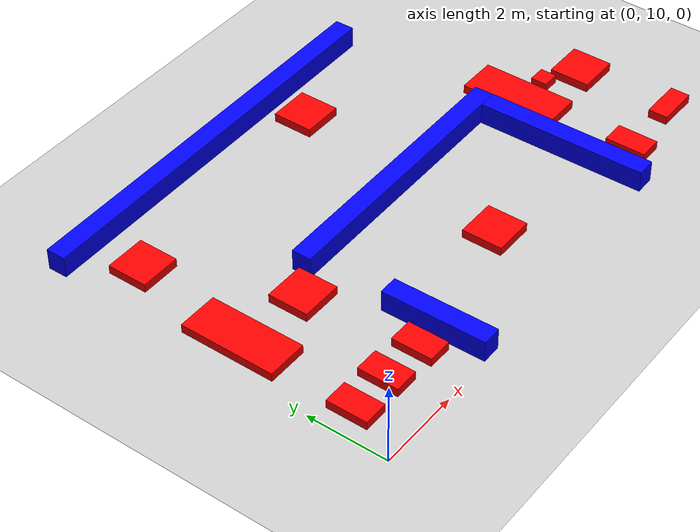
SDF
<sdf version="1.7">
 <world name="default">
  <model name="ground_plane">
   <static>1</static>
   <link name="link">
    <collision name="collision">
     <geometry><plane><normal>0 0 1</normal><size>100 100</size></plane></geometry>
     <surface>
      <contact><collide_bitmask>65535</collide_bitmask></contact>
      <friction><ode><mu>100</mu><mu2>50</mu2></ode></friction>
     </surface>
    </collision>
    <visual name="visual">
     <cast_shadows>0</cast_shadows>
     <geometry><plane><normal>0 0 1</normal><size>100 100</size></plane></geometry>
     <material>
      <script><uri>file://media/materials/scripts/gazebo.material</uri><name>Gazebo/Grey</name></script>
     </material>
    </visual>
   </link>
  </model>
  <model name="blue__wall_clone_clone_clone_clone">
   <link name="link_0">
    <inertial>
     <mass>3.38479</mass>
     <inertia><ixx>51.2617</ixx><ixy>0</ixy><ixz>0</ixz><iyy>0.142515</iyy><iyz>0</iyz><izz>51.2469</izz></inertia>
    </inertial>
    <visual name="visual">
     <geometry><box><size>0.47589 10.1039 0.528001</size></box></geometry>
     <material>
      <lighting>1</lighting>
      <script><uri>file://media/materials/scripts/gazebo.material</uri><name>Gazebo/Grey</name></script>
      <shader type="pixel"><normal_map>__default__</normal_map></shader>
      <ambient>0 0 1 0</ambient>
      <diffuse>0.7 0.7 0.7 1</diffuse>
      <specular>0.01 0.01 0.01 1</specular>
      <emissive>0 0 0 1</emissive>
     </material>
    </visual>
    <collision name="collision">
     <geometry><box><size>0.47589 10.1039 0.528001</size></box></geometry>
     <surface>
      <friction>
       <ode><mu>1</mu><mu2>1</mu2><fdir1>0 0 0</fdir1><slip1>0</slip1><slip2>0</slip2></ode>
       <torsional>
        <coefficient>1</coefficient>
        <patch_radius>0</patch_radius>
        <surface_radius>0</surface_radius>
        <use_patch_radius>1</use_patch_radius>
        <ode><slip>0</slip></ode>
       </torsional>
      </friction>
      <bounce><restitution_coefficient>0</restitution_coefficient><threshold>1e+06</threshold></bounce>
      <contact>
       <collide_without_contact>0</collide_without_contact>
       <collide_without_contact_bitmask>1</collide_without_contact_bitmask>
       <collide_bitmask>1</collide_bitmask>
       <ode>
        <soft_cfm>0</soft_cfm>
        <soft_erp>0.2</soft_erp>
        <kp>1e+13</kp>
        <kd>1</kd>
        <max_vel>0.01</max_vel>
        <min_depth>0</min_depth>
       </ode>
       <bullet>
        <split_impulse>1</split_impulse>
        <split_impulse_penetration_threshold>-0.01</split_impulse_penetration_threshold>
        <soft_cfm>0</soft_cfm>
        <soft_erp>0.2</soft_erp>
        <kp>1e+13</kp>
        <kd>1</kd>
       </bullet>
      </contact>
     </surface>
    </collision>
   </link>
   <static>0</static>
   <pose>5.18293 18.7739 0.264 0 -0 1.58016</pose>
  </model>
  <model name="blue__wall_clone_clone_clone_clone_clone_clone_clone_clone_clone">
   <link name="link_0">
    <inertial>
     <mass>3.38479</mass>
     <inertia><ixx>51.2617</ixx><ixy>0</ixy><ixz>0</ixz><iyy>0.142515</iyy><iyz>0</iyz><izz>51.2469</izz></inertia>
    </inertial>
    <visual name="visual">
     <geometry><box><size>0.47589 2.55946 0.528001</size></box></geometry>
     <material>
      <lighting>1</lighting>
      <script><uri>file://media/materials/scripts/gazebo.material</uri><name>Gazebo/Grey</name></script>
      <shader type="pixel"><normal_map>__default__</normal_map></shader>
      <ambient>0 0 1 0</ambient>
      <diffuse>0.7 0.7 0.7 1</diffuse>
      <specular>0.01 0.01 0.01 1</specular>
      <emissive>0 0 0 1</emissive>
     </material>
    </visual>
    <collision name="collision">
     <geometry><box><size>0.47589 2.55946 0.528001</size></box></geometry>
     <surface>
      <friction>
       <ode><mu>1</mu><mu2>1</mu2><fdir1>0 0 0</fdir1><slip1>0</slip1><slip2>0</slip2></ode>
       <torsional>
        <coefficient>1</coefficient>
        <patch_radius>0</patch_radius>
        <surface_radius>0</surface_radius>
        <use_patch_radius>1</use_patch_radius>
        <ode><slip>0</slip></ode>
       </torsional>
      </friction>
      <bounce><restitution_coefficient>0</restitution_coefficient><threshold>1e+06</threshold></bounce>
      <contact>
       <collide_without_contact>0</collide_without_contact>
       <collide_without_contact_bitmask>1</collide_without_contact_bitmask>
       <collide_bitmask>1</collide_bitmask>
       <ode>
        <soft_cfm>0</soft_cfm>
        <soft_erp>0.2</soft_erp>
        <kp>1e+13</kp>
        <kd>1</kd>
        <max_vel>0.01</max_vel>
        <min_depth>0</min_depth>
       </ode>
       <bullet>
        <split_impulse>1</split_impulse>
        <split_impulse_penetration_threshold>-0.01</split_impulse_penetration_threshold>
        <soft_cfm>0</soft_cfm>
        <soft_erp>0.2</soft_erp>
        <kp>1e+13</kp>
        <kd>1</kd>
       </bullet>
      </contact>
     </surface>
    </collision>
   </link>
   <static>0</static>
   <pose>3.50586 11.3064 0.264 0 0 -3.12763</pose>
  </model>
  <model name="blue__wall_clone_clone_clone_clone_clone_clone_clone_clone_clone_0">
   <link name="link_0">
    <inertial>
     <mass>3.38479</mass>
     <inertia><ixx>51.2617</ixx><ixy>0</ixy><ixz>0</ixz><iyy>0.142515</iyy><iyz>0</iyz><izz>51.2469</izz></inertia>
    </inertial>
    <visual name="visual">
     <geometry><box><size>0.47589 4.18247 0.528001</size></box></geometry>
     <material>
      <lighting>1</lighting>
      <script><uri>file://media/materials/scripts/gazebo.material</uri><name>Gazebo/Grey</name></script>
      <shader type="pixel"><normal_map>__default__</normal_map></shader>
      <ambient>0 0 1 0</ambient>
      <diffuse>0.7 0.7 0.7 1</diffuse>
      <specular>0.01 0.01 0.01 1</specular>
      <emissive>0 0 0 1</emissive>
     </material>
    </visual>
    <collision name="collision">
     <geometry><box><size>0.47589 4.18247 0.528001</size></box></geometry>
     <surface>
      <friction>
       <ode><mu>1</mu><mu2>1</mu2><fdir1>0 0 0</fdir1><slip1>0</slip1><slip2>0</slip2></ode>
       <torsional>
        <coefficient>1</coefficient>
        <patch_radius>0</patch_radius>
        <surface_radius>0</surface_radius>
        <use_patch_radius>1</use_patch_radius>
        <ode><slip>0</slip></ode>
       </torsional>
      </friction>
      <bounce><restitution_coefficient>0</restitution_coefficient><threshold>1e+06</threshold></bounce>
      <contact>
       <collide_without_contact>0</collide_without_contact>
       <collide_without_contact_bitmask>1</collide_without_contact_bitmask>
       <collide_bitmask>1</collide_bitmask>
       <ode>
        <soft_cfm>0</soft_cfm>
        <soft_erp>0.2</soft_erp>
        <kp>1e+13</kp>
        <kd>1</kd>
        <max_vel>0.01</max_vel>
        <min_depth>0</min_depth>
       </ode>
       <bullet>
        <split_impulse>1</split_impulse>
        <split_impulse_penetration_threshold>-0.01</split_impulse_penetration_threshold>
        <soft_cfm>0</soft_cfm>
        <soft_erp>0.2</soft_erp>
        <kp>1e+13</kp>
        <kd>1</kd>
       </bullet>
      </contact>
     </surface>
    </collision>
   </link>
   <static>0</static>
   <pose>9.87082 12.3354 0.264 0 -0 -3.13011</pose>
  </model>
  <model name="blue__wall_clone_clone_clone_clone_clone_clone_0">
   <link name="link_0">
    <inertial>
     <mass>3.38479</mass>
     <inertia><ixx>51.2617</ixx><ixy>0</ixy><ixz>0</ixz><iyy>0.142515</iyy><iyz>0</iyz><izz>51.2469</izz></inertia>
    </inertial>
    <visual name="visual">
     <geometry><box><size>0.47589 6.9172 0.528001</size></box></geometry>
     <material>
      <lighting>1</lighting>
      <script><uri>file://media/materials/scripts/gazebo.material</uri><name>Gazebo/Grey</name></script>
      <shader type="pixel"><normal_map>__default__</normal_map></shader>
      <ambient>0 0 1 0</ambient>
      <diffuse>0.7 0.7 0.7 1</diffuse>
      <specular>0.01 0.01 0.01 1</specular>
      <emissive>0 0 0 1</emissive>
     </material>
    </visual>
    <collision name="collision">
     <geometry><box><size>0.47589 6.9172 0.528001</size></box></geometry>
     <surface>
      <friction>
       <ode><mu>1</mu><mu2>1</mu2><fdir1>0 0 0</fdir1><slip1>0</slip1><slip2>0</slip2></ode>
       <torsional>
        <coefficient>1</coefficient>
        <patch_radius>0</patch_radius>
        <surface_radius>0</surface_radius>
        <use_patch_radius>1</use_patch_radius>
        <ode><slip>0</slip></ode>
       </torsional>
      </friction>
      <bounce><restitution_coefficient>0</restitution_coefficient><threshold>1e+06</threshold></bounce>
      <contact>
       <collide_without_contact>0</collide_without_contact>
       <collide_without_contact_bitmask>1</collide_without_contact_bitmask>
       <collide_bitmask>1</collide_bitmask>
       <ode>
        <soft_cfm>0</soft_cfm>
        <soft_erp>0.2</soft_erp>
        <kp>1e+13</kp>
        <kd>1</kd>
        <max_vel>0.01</max_vel>
        <min_depth>0</min_depth>
       </ode>
       <bullet>
        <split_impulse>1</split_impulse>
        <split_impulse_penetration_threshold>-0.01</split_impulse_penetration_threshold>
        <soft_cfm>0</soft_cfm>
        <soft_erp>0.2</soft_erp>
        <kp>1e+13</kp>
        <kd>1</kd>
       </bullet>
      </contact>
     </surface>
    </collision>
   </link>
   <static>0</static>
   <pose>6.61449 14.6269 0.264 0 -0 1.58316</pose>
  </model>
  <model name="red_mines">
   <link name="link_1">
    <inertial>
     <mass>1</mass>
     <inertia>
      <ixx>0.166667</ixx>
      <ixy>0</ixy>
      <ixz>0</ixz>
      <iyy>0.166667</iyy>
      <iyz>0</iyz>
      <izz>0.166667</izz>
     </inertia>
    </inertial>
    <visual name="visual">
     <geometry><box><size>1 2.35738 0.214149</size></box></geometry>
     <material>
      <lighting>1</lighting>
      <script><uri>file://media/materials/scripts/gazebo.material</uri><name>Gazebo/Grey</name></script>
      <shader type="pixel"><normal_map>__default__</normal_map></shader>
      <ambient>1 0 0 0</ambient>
      <diffuse>0.7 0.7 0.7 1</diffuse>
      <specular>0.01 0.01 0.01 1</specular>
      <emissive>0 0 0 1</emissive>
     </material>
    </visual>
    <collision name="collision">
     <geometry><box><size>1 2.35738 0.214149</size></box></geometry>
     <surface>
      <friction>
       <ode><mu>1</mu><mu2>1</mu2><fdir1>0 0 0</fdir1><slip1>0</slip1><slip2>0</slip2></ode>
       <torsional>
        <coefficient>1</coefficient>
        <patch_radius>0</patch_radius>
        <surface_radius>0</surface_radius>
        <use_patch_radius>1</use_patch_radius>
        <ode><slip>0</slip></ode>
       </torsional>
      </friction>
      <bounce><restitution_coefficient>0</restitution_coefficient><threshold>1e+06</threshold></bounce>
      <contact>
       <collide_without_contact>0</collide_without_contact>
       <collide_without_contact_bitmask>1</collide_without_contact_bitmask>
       <collide_bitmask>1</collide_bitmask>
       <ode>
        <soft_cfm>0</soft_cfm>
        <soft_erp>0.2</soft_erp>
        <kp>1e+13</kp>
        <kd>1</kd>
        <max_vel>0.01</max_vel>
        <min_depth>0</min_depth>
       </ode>
       <bullet>
        <split_impulse>1</split_impulse>
        <split_impulse_penetration_threshold>-0.01</split_impulse_penetration_threshold>
        <soft_cfm>0</soft_cfm>
        <soft_erp>0.2</soft_erp>
        <kp>1e+13</kp>
        <kd>1</kd>
       </bullet>
      </contact>
     </surface>
    </collision>
   </link>
   <static>0</static>
   <pose>10.8018 14.2028 0.10707 0 1e-05 -1e-06</pose>
  </model>
  <model name="red_mines_clone_clone_clone">
   <link name="link_1">
    <inertial>
     <mass>1</mass>
     <inertia>
      <ixx>0.166667</ixx>
      <ixy>0</ixy>
      <ixz>0</ixz>
      <iyy>0.166667</iyy>
      <iyz>0</iyz>
      <izz>0.166667</izz>
     </inertia>
    </inertial>
    <visual name="visual">
     <geometry><box><size>1 1 0.214149</size></box></geometry>
     <material>
      <lighting>1</lighting>
      <script><uri>file://media/materials/scripts/gazebo.material</uri><name>Gazebo/Grey</name></script>
      <shader type="pixel"><normal_map>__default__</normal_map></shader>
      <ambient>1 0 0 0</ambient>
      <diffuse>0.7 0.7 0.7 1</diffuse>
      <specular>0.01 0.01 0.01 1</specular>
      <emissive>0 0 0 1</emissive>
     </material>
    </visual>
    <collision name="collision">
     <geometry><box><size>1 1 0.214149</size></box></geometry>
     <surface>
      <friction>
       <ode><mu>1</mu><mu2>1</mu2><fdir1>0 0 0</fdir1><slip1>0</slip1><slip2>0</slip2></ode>
       <torsional>
        <coefficient>1</coefficient>
        <patch_radius>0</patch_radius>
        <surface_radius>0</surface_radius>
        <use_patch_radius>1</use_patch_radius>
        <ode><slip>0</slip></ode>
       </torsional>
      </friction>
      <bounce><restitution_coefficient>0</restitution_coefficient><threshold>1e+06</threshold></bounce>
      <contact>
       <collide_without_contact>0</collide_without_contact>
       <collide_without_contact_bitmask>1</collide_without_contact_bitmask>
       <collide_bitmask>1</collide_bitmask>
       <ode>
        <soft_cfm>0</soft_cfm>
        <soft_erp>0.2</soft_erp>
        <kp>1e+13</kp>
        <kd>1</kd>
        <max_vel>0.01</max_vel>
        <min_depth>0</min_depth>
       </ode>
       <bullet>
        <split_impulse>1</split_impulse>
        <split_impulse_penetration_threshold>-0.01</split_impulse_penetration_threshold>
        <soft_cfm>0</soft_cfm>
        <soft_erp>0.2</soft_erp>
        <kp>1e+13</kp>
        <kd>1</kd>
       </bullet>
      </contact>
     </surface>
    </collision>
   </link>
   <static>0</static>
   <pose>1.26581 17.3408 0.107074 0 -0 0</pose>
  </model>
  <model name="red_mines_clone_clone_0">
   <link name="link_1">
    <inertial>
     <mass>1</mass>
     <inertia>
      <ixx>0.166667</ixx>
      <ixy>0</ixy>
      <ixz>0</ixz>
      <iyy>0.166667</iyy>
      <iyz>0</iyz>
      <izz>0.166667</izz>
     </inertia>
    </inertial>
    <visual name="visual">
     <geometry><box><size>0.580738 1 0.214149</size></box></geometry>
     <material>
      <lighting>1</lighting>
      <script><uri>file://media/materials/scripts/gazebo.material</uri><name>Gazebo/Grey</name></script>
      <shader type="pixel"><normal_map>__default__</normal_map></shader>
      <ambient>1 0 0 0</ambient>
      <diffuse>0.7 0.7 0.7 1</diffuse>
      <specular>0.01 0.01 0.01 1</specular>
      <emissive>0 0 0 1</emissive>
     </material>
    </visual>
    <collision name="collision">
     <geometry><box><size>0.580738 1 0.214149</size></box></geometry>
     <surface>
      <friction>
       <ode><mu>1</mu><mu2>1</mu2><fdir1>0 0 0</fdir1><slip1>0</slip1><slip2>0</slip2></ode>
       <torsional>
        <coefficient>1</coefficient>
        <patch_radius>0</patch_radius>
        <surface_radius>0</surface_radius>
        <use_patch_radius>1</use_patch_radius>
        <ode><slip>0</slip></ode>
       </torsional>
      </friction>
      <bounce><restitution_coefficient>0</restitution_coefficient><threshold>1e+06</threshold></bounce>
      <contact>
       <collide_without_contact>0</collide_without_contact>
       <collide_without_contact_bitmask>1</collide_without_contact_bitmask>
       <collide_bitmask>1</collide_bitmask>
       <ode>
        <soft_cfm>0</soft_cfm>
        <soft_erp>0.2</soft_erp>
        <kp>1e+13</kp>
        <kd>1</kd>
        <max_vel>0.01</max_vel>
        <min_depth>0</min_depth>
       </ode>
       <bullet>
        <split_impulse>1</split_impulse>
        <split_impulse_penetration_threshold>-0.01</split_impulse_penetration_threshold>
        <soft_cfm>0</soft_cfm>
        <soft_erp>0.2</soft_erp>
        <kp>1e+13</kp>
        <kd>1</kd>
       </bullet>
      </contact>
     </surface>
    </collision>
   </link>
   <static>0</static>
   <pose>10.8801 11.1899 0.107074 0 -0 0</pose>
  </model>
  <model name="red_mines_clone_clone_0_clone">
   <link name="link_1">
    <inertial>
     <mass>1</mass>
     <inertia>
      <ixx>0.166667</ixx>
      <ixy>0</ixy>
      <ixz>0</ixz>
      <iyy>0.166667</iyy>
      <iyz>0</iyz>
      <izz>0.166667</izz>
     </inertia>
    </inertial>
    <visual name="visual">
     <geometry><box><size>1.02755 0.479522 0.214149</size></box></geometry>
     <material>
      <lighting>1</lighting>
      <script><uri>file://media/materials/scripts/gazebo.material</uri><name>Gazebo/Grey</name></script>
      <shader type="pixel"><normal_map>__default__</normal_map></shader>
      <ambient>1 0 0 0</ambient>
      <diffuse>0.7 0.7 0.7 1</diffuse>
      <specular>0.01 0.01 0.01 1</specular>
      <emissive>0 0 0 1</emissive>
     </material>
    </visual>
    <collision name="collision">
     <geometry><box><size>1.02755 0.479522 0.214149</size></box></geometry>
     <surface>
      <friction>
       <ode><mu>1</mu><mu2>1</mu2><fdir1>0 0 0</fdir1><slip1>0</slip1><slip2>0</slip2></ode>
       <torsional>
        <coefficient>1</coefficient>
        <patch_radius>0</patch_radius>
        <surface_radius>0</surface_radius>
        <use_patch_radius>1</use_patch_radius>
        <ode><slip>0</slip></ode>
       </torsional>
      </friction>
      <bounce><restitution_coefficient>0</restitution_coefficient><threshold>1e+06</threshold></bounce>
      <contact>
       <collide_without_contact>0</collide_without_contact>
       <collide_without_contact_bitmask>1</collide_without_contact_bitmask>
       <collide_bitmask>1</collide_bitmask>
       <ode>
        <soft_cfm>0</soft_cfm>
        <soft_erp>0.2</soft_erp>
        <kp>1e+13</kp>
        <kd>1</kd>
        <max_vel>0.01</max_vel>
        <min_depth>0</min_depth>
       </ode>
       <bullet>
        <split_impulse>1</split_impulse>
        <split_impulse_penetration_threshold>-0.01</split_impulse_penetration_threshold>
        <soft_cfm>0</soft_cfm>
        <soft_erp>0.2</soft_erp>
        <kp>1e+13</kp>
        <kd>1</kd>
       </bullet>
      </contact>
     </surface>
    </collision>
   </link>
   <static>0</static>
   <pose>12.5777 11.2031 0.107074 0 -0 0</pose>
  </model>
  <model name="red_mines_clone_clone_1">
   <link name="link_1">
    <inertial>
     <mass>1</mass>
     <inertia>
      <ixx>0.166667</ixx>
      <ixy>0</ixy>
      <ixz>0</ixz>
      <iyy>0.166667</iyy>
      <iyz>0</iyz>
      <izz>0.166667</izz>
     </inertia>
    </inertial>
    <visual name="visual">
     <geometry><box><size>1.02755 1 0.214149</size></box></geometry>
     <material>
      <lighting>1</lighting>
      <script><uri>file://media/materials/scripts/gazebo.material</uri><name>Gazebo/Grey</name></script>
      <shader type="pixel"><normal_map>__default__</normal_map></shader>
      <ambient>1 0 0 0</ambient>
      <diffuse>0.7 0.7 0.7 1</diffuse>
      <specular>0.01 0.01 0.01 1</specular>
      <emissive>0 0 0 1</emissive>
     </material>
    </visual>
    <collision name="collision">
     <geometry><box><size>1.02755 1 0.214149</size></box></geometry>
     <surface>
      <friction>
       <ode><mu>1</mu><mu2>1</mu2><fdir1>0 0 0</fdir1><slip1>0</slip1><slip2>0</slip2></ode>
       <torsional>
        <coefficient>1</coefficient>
        <patch_radius>0</patch_radius>
        <surface_radius>0</surface_radius>
        <use_patch_radius>1</use_patch_radius>
        <ode><slip>0</slip></ode>
       </torsional>
      </friction>
      <bounce><restitution_coefficient>0</restitution_coefficient><threshold>1e+06</threshold></bounce>
      <contact>
       <collide_without_contact>0</collide_without_contact>
       <collide_without_contact_bitmask>1</collide_without_contact_bitmask>
       <collide_bitmask>1</collide_bitmask>
       <ode>
        <soft_cfm>0</soft_cfm>
        <soft_erp>0.2</soft_erp>
        <kp>1e+13</kp>
        <kd>1</kd>
        <max_vel>0.01</max_vel>
        <min_depth>0</min_depth>
       </ode>
       <bullet>
        <split_impulse>1</split_impulse>
        <split_impulse_penetration_threshold>-0.01</split_impulse_penetration_threshold>
        <soft_cfm>0</soft_cfm>
        <soft_erp>0.2</soft_erp>
        <kp>1e+13</kp>
        <kd>1</kd>
       </bullet>
      </contact>
     </surface>
    </collision>
   </link>
   <static>0</static>
   <pose>12.5402 13.5814 0.107074 0 -0 0</pose>
  </model>
  <model name="red_mines_clone_clone_0_clone_0_clone">
   <link name="link_1">
    <inertial>
     <mass>1</mass>
     <inertia>
      <ixx>0.166667</ixx>
      <ixy>0</ixy>
      <ixz>0</ixz>
      <iyy>0.166667</iyy>
      <iyz>0</iyz>
      <izz>0.166667</izz>
     </inertia>
    </inertial>
    <visual name="visual">
     <geometry><box><size>0.431002 0.405557 0.214149</size></box></geometry>
     <material>
      <lighting>1</lighting>
      <script><uri>file://media/materials/scripts/gazebo.material</uri><name>Gazebo/Grey</name></script>
      <shader type="pixel"><normal_map>__default__</normal_map></shader>
      <ambient>1 0 0 0</ambient>
      <diffuse>0.7 0.7 0.7 1</diffuse>
      <specular>0.01 0.01 0.01 1</specular>
      <emissive>0 0 0 1</emissive>
     </material>
    </visual>
    <collision name="collision">
     <geometry><box><size>0.431002 0.405557 0.214149</size></box></geometry>
     <surface>
      <friction>
       <ode><mu>1</mu><mu2>1</mu2><fdir1>0 0 0</fdir1><slip1>0</slip1><slip2>0</slip2></ode>
       <torsional>
        <coefficient>1</coefficient>
        <patch_radius>0</patch_radius>
        <surface_radius>0</surface_radius>
        <use_patch_radius>1</use_patch_radius>
        <ode><slip>0</slip></ode>
       </torsional>
      </friction>
      <bounce><restitution_coefficient>0</restitution_coefficient><threshold>1e+06</threshold></bounce>
      <contact>
       <collide_without_contact>0</collide_without_contact>
       <collide_without_contact_bitmask>1</collide_without_contact_bitmask>
       <collide_bitmask>1</collide_bitmask>
       <ode>
        <soft_cfm>0</soft_cfm>
        <soft_erp>0.2</soft_erp>
        <kp>1e+13</kp>
        <kd>1</kd>
        <max_vel>0.01</max_vel>
        <min_depth>0</min_depth>
       </ode>
       <bullet>
        <split_impulse>1</split_impulse>
        <split_impulse_penetration_threshold>-0.01</split_impulse_penetration_threshold>
        <soft_cfm>0</soft_cfm>
        <soft_erp>0.2</soft_erp>
        <kp>1e+13</kp>
        <kd>1</kd>
       </bullet>
      </contact>
     </surface>
    </collision>
   </link>
   <static>0</static>
   <pose>11.6855 14.0674 0.107074 0 -0 0</pose>
  </model>
  <model name="red_mines_clone_clone_clone_clone_3">
   <link name="link_1">
    <inertial>
     <mass>1</mass>
     <inertia>
      <ixx>0.166667</ixx>
      <ixy>0</ixy>
      <ixz>0</ixz>
      <iyy>0.166667</iyy>
      <iyz>0</iyz>
      <izz>0.166667</izz>
     </inertia>
    </inertial>
    <visual name="visual">
     <geometry><box><size>1 1 0.214149</size></box></geometry>
     <material>
      <lighting>1</lighting>
      <script><uri>file://media/materials/scripts/gazebo.material</uri><name>Gazebo/Grey</name></script>
      <shader type="pixel"><normal_map>__default__</normal_map></shader>
      <ambient>1 0 0 0</ambient>
      <diffuse>0.7 0.7 0.7 1</diffuse>
      <specular>0.01 0.01 0.01 1</specular>
      <emissive>0 0 0 1</emissive>
     </material>
    </visual>
    <collision name="collision">
     <geometry><box><size>1 1 0.214149</size></box></geometry>
     <surface>
      <friction>
       <ode><mu>1</mu><mu2>1</mu2><fdir1>0 0 0</fdir1><slip1>0</slip1><slip2>0</slip2></ode>
       <torsional>
        <coefficient>1</coefficient>
        <patch_radius>0</patch_radius>
        <surface_radius>0</surface_radius>
        <use_patch_radius>1</use_patch_radius>
        <ode><slip>0</slip></ode>
       </torsional>
      </friction>
      <bounce><restitution_coefficient>0</restitution_coefficient><threshold>1e+06</threshold></bounce>
      <contact>
       <collide_without_contact>0</collide_without_contact>
       <collide_without_contact_bitmask>1</collide_without_contact_bitmask>
       <collide_bitmask>1</collide_bitmask>
       <ode>
        <soft_cfm>0</soft_cfm>
        <soft_erp>0.2</soft_erp>
        <kp>1e+13</kp>
        <kd>1</kd>
        <max_vel>0.01</max_vel>
        <min_depth>0</min_depth>
       </ode>
       <bullet>
        <split_impulse>1</split_impulse>
        <split_impulse_penetration_threshold>-0.01</split_impulse_penetration_threshold>
        <soft_cfm>0</soft_cfm>
        <soft_erp>0.2</soft_erp>
        <kp>1e+13</kp>
        <kd>1</kd>
       </bullet>
      </contact>
     </surface>
    </collision>
   </link>
   <static>0</static>
   <pose>6.59498 12.0215 0.107074 0 -0 0</pose>
  </model>
  <model name="red_mines_clone_clone_clone_clone_5">
   <link name="link_1">
    <inertial>
     <mass>1</mass>
     <inertia>
      <ixx>0.166667</ixx>
      <ixy>0</ixy>
      <ixz>0</ixz>
      <iyy>0.166667</iyy>
      <iyz>0</iyz>
      <izz>0.166667</izz>
     </inertia>
    </inertial>
    <visual name="visual">
     <geometry><box><size>1 1 0.214149</size></box></geometry>
     <material>
      <lighting>1</lighting>
      <script><uri>file://media/materials/scripts/gazebo.material</uri><name>Gazebo/Grey</name></script>
      <shader type="pixel"><normal_map>__default__</normal_map></shader>
      <ambient>1 0 0 0</ambient>
      <diffuse>0.7 0.7 0.7 1</diffuse>
      <specular>0.01 0.01 0.01 1</specular>
      <emissive>0 0 0 1</emissive>
     </material>
    </visual>
    <collision name="collision">
     <geometry><box><size>1 1 0.214149</size></box></geometry>
     <surface>
      <friction>
       <ode><mu>1</mu><mu2>1</mu2><fdir1>0 0 0</fdir1><slip1>0</slip1><slip2>0</slip2></ode>
       <torsional>
        <coefficient>1</coefficient>
        <patch_radius>0</patch_radius>
        <surface_radius>0</surface_radius>
        <use_patch_radius>1</use_patch_radius>
        <ode><slip>0</slip></ode>
       </torsional>
      </friction>
      <bounce><restitution_coefficient>0</restitution_coefficient><threshold>1e+06</threshold></bounce>
      <contact>
       <collide_without_contact>0</collide_without_contact>
       <collide_without_contact_bitmask>1</collide_without_contact_bitmask>
       <collide_bitmask>1</collide_bitmask>
       <ode>
        <soft_cfm>0</soft_cfm>
        <soft_erp>0.2</soft_erp>
        <kp>1e+13</kp>
        <kd>1</kd>
        <max_vel>0.01</max_vel>
        <min_depth>0</min_depth>
       </ode>
       <bullet>
        <split_impulse>1</split_impulse>
        <split_impulse_penetration_threshold>-0.01</split_impulse_penetration_threshold>
        <soft_cfm>0</soft_cfm>
        <soft_erp>0.2</soft_erp>
        <kp>1e+13</kp>
        <kd>1</kd>
       </bullet>
      </contact>
     </surface>
    </collision>
   </link>
   <static>0</static>
   <pose>7.34995 17.7583 0.107074 0 -0 0</pose>
  </model>
  <model name="red_mines_clone_clone_0_clone_0_clone_0">
   <link name="link_1">
    <inertial>
     <mass>1</mass>
     <inertia>
      <ixx>0.166667</ixx>
      <ixy>0</ixy>
      <ixz>0</ixz>
      <iyy>0.166667</iyy>
      <iyz>0</iyz>
      <izz>0.166667</izz>
     </inertia>
    </inertial>
    <visual name="visual">
     <geometry><box><size>0.602904 1 0.214149</size></box></geometry>
     <material>
      <lighting>1</lighting>
      <script><uri>file://media/materials/scripts/gazebo.material</uri><name>Gazebo/Grey</name></script>
      <shader type="pixel"><normal_map>__default__</normal_map></shader>
      <ambient>1 0 0 0</ambient>
      <diffuse>0.7 0.7 0.7 1</diffuse>
      <specular>0.01 0.01 0.01 1</specular>
      <emissive>0 0 0 1</emissive>
     </material>
    </visual>
    <collision name="collision">
     <geometry><box><size>0.602904 1 0.214149</size></box></geometry>
     <surface>
      <friction>
       <ode><mu>1</mu><mu2>1</mu2><fdir1>0 0 0</fdir1><slip1>0</slip1><slip2>0</slip2></ode>
       <torsional>
        <coefficient>1</coefficient>
        <patch_radius>0</patch_radius>
        <surface_radius>0</surface_radius>
        <use_patch_radius>1</use_patch_radius>
        <ode><slip>0</slip></ode>
       </torsional>
      </friction>
      <bounce><restitution_coefficient>0</restitution_coefficient><threshold>1e+06</threshold></bounce>
      <contact>
       <collide_without_contact>0</collide_without_contact>
       <collide_without_contact_bitmask>1</collide_without_contact_bitmask>
       <collide_bitmask>1</collide_bitmask>
       <ode>
        <soft_cfm>0</soft_cfm>
        <soft_erp>0.2</soft_erp>
        <kp>1e+13</kp>
        <kd>1</kd>
        <max_vel>0.01</max_vel>
        <min_depth>0</min_depth>
       </ode>
       <bullet>
        <split_impulse>1</split_impulse>
        <split_impulse_penetration_threshold>-0.01</split_impulse_penetration_threshold>
        <soft_cfm>0</soft_cfm>
        <soft_erp>0.2</soft_erp>
        <kp>1e+13</kp>
        <kd>1</kd>
       </bullet>
      </contact>
     </surface>
    </collision>
   </link>
   <static>0</static>
   <pose>0.696929 11.3162 0.107074 0 -0 0</pose>
  </model>
  <model name="red_mines_clone">
   <link name="link_1">
    <inertial>
     <mass>1</mass>
     <inertia>
      <ixx>0.166667</ixx>
      <ixy>0</ixy>
      <ixz>0</ixz>
      <iyy>0.166667</iyy>
      <iyz>0</iyz>
      <izz>0.166667</izz>
     </inertia>
    </inertial>
    <visual name="visual">
     <geometry><box><size>1 2.35739 0.214149</size></box></geometry>
     <material>
      <lighting>1</lighting>
      <script><uri>file://media/materials/scripts/gazebo.material</uri><name>Gazebo/Grey</name></script>
      <shader type="pixel"><normal_map>__default__</normal_map></shader>
      <ambient>1 0 0 0</ambient>
      <diffuse>0.7 0.7 0.7 1</diffuse>
      <specular>0.01 0.01 0.01 1</specular>
      <emissive>0 0 0 1</emissive>
     </material>
    </visual>
    <collision name="collision">
     <geometry><box><size>1 2.35739 0.214149</size></box></geometry>
     <surface>
      <friction>
       <ode><mu>1</mu><mu2>1</mu2><fdir1>0 0 0</fdir1><slip1>0</slip1><slip2>0</slip2></ode>
       <torsional>
        <coefficient>1</coefficient>
        <patch_radius>0</patch_radius>
        <surface_radius>0</surface_radius>
        <use_patch_radius>1</use_patch_radius>
        <ode><slip>0</slip></ode>
       </torsional>
      </friction>
      <bounce><restitution_coefficient>0</restitution_coefficient><threshold>1e+06</threshold></bounce>
      <contact>
       <collide_without_contact>0</collide_without_contact>
       <collide_without_contact_bitmask>1</collide_without_contact_bitmask>
       <collide_bitmask>1</collide_bitmask>
       <ode>
        <soft_cfm>0</soft_cfm>
        <soft_erp>0.2</soft_erp>
        <kp>1e+13</kp>
        <kd>1</kd>
        <max_vel>0.01</max_vel>
        <min_depth>0</min_depth>
       </ode>
       <bullet>
        <split_impulse>1</split_impulse>
        <split_impulse_penetration_threshold>-0.01</split_impulse_penetration_threshold>
        <soft_cfm>0</soft_cfm>
        <soft_erp>0.2</soft_erp>
        <kp>1e+13</kp>
        <kd>1</kd>
       </bullet>
      </contact>
     </surface>
    </collision>
   </link>
   <static>0</static>
   <pose>0.821955 14.2828 0.10707 0 1e-05 -1e-06</pose>
  </model>
  <model name="red_mines_clone_clone_1_clone">
   <link name="link_1">
    <inertial>
     <mass>1</mass>
     <inertia>
      <ixx>0.166667</ixx>
      <ixy>0</ixy>
      <ixz>0</ixz>
      <iyy>0.166667</iyy>
      <iyz>0</iyz>
      <izz>0.166667</izz>
     </inertia>
    </inertial>
    <visual name="visual">
     <geometry><box><size>1.02755 1 0.214149</size></box></geometry>
     <material>
      <lighting>1</lighting>
      <script><uri>file://media/materials/scripts/gazebo.material</uri><name>Gazebo/Grey</name></script>
      <shader type="pixel"><normal_map>__default__</normal_map></shader>
      <ambient>1 0 0 0</ambient>
      <diffuse>0.7 0.7 0.7 1</diffuse>
      <specular>0.01 0.01 0.01 1</specular>
      <emissive>0 0 0 1</emissive>
     </material>
    </visual>
    <collision name="collision">
     <geometry><box><size>1.02755 1 0.214149</size></box></geometry>
     <surface>
      <friction>
       <ode><mu>1</mu><mu2>1</mu2><fdir1>0 0 0</fdir1><slip1>0</slip1><slip2>0</slip2></ode>
       <torsional>
        <coefficient>1</coefficient>
        <patch_radius>0</patch_radius>
        <surface_radius>0</surface_radius>
        <use_patch_radius>1</use_patch_radius>
        <ode><slip>0</slip></ode>
       </torsional>
      </friction>
      <bounce><restitution_coefficient>0</restitution_coefficient><threshold>1e+06</threshold></bounce>
      <contact>
       <collide_without_contact>0</collide_without_contact>
       <collide_without_contact_bitmask>1</collide_without_contact_bitmask>
       <collide_bitmask>1</collide_bitmask>
       <ode>
        <soft_cfm>0</soft_cfm>
        <soft_erp>0.2</soft_erp>
        <kp>1e+13</kp>
        <kd>1</kd>
        <max_vel>0.01</max_vel>
        <min_depth>0</min_depth>
       </ode>
       <bullet>
        <split_impulse>1</split_impulse>
        <split_impulse_penetration_threshold>-0.01</split_impulse_penetration_threshold>
        <soft_cfm>0</soft_cfm>
        <soft_erp>0.2</soft_erp>
        <kp>1e+13</kp>
        <kd>1</kd>
       </bullet>
      </contact>
     </surface>
    </collision>
   </link>
   <static>0</static>
   <pose>2.58053 14.0961 0.107074 0 -0 0</pose>
  </model>
  <model name="red_mines_clone_clone_0_clone_0_clone_1">
   <link name="link_1">
    <inertial>
     <mass>1</mass>
     <inertia>
      <ixx>0.166667</ixx>
      <ixy>0</ixy>
      <ixz>0</ixz>
      <iyy>0.166667</iyy>
      <iyz>0</iyz>
      <izz>0.166667</izz>
     </inertia>
    </inertial>
    <visual name="visual">
     <geometry><box><size>0.602904 1 0.214149</size></box></geometry>
     <material>
      <lighting>1</lighting>
      <script><uri>file://media/materials/scripts/gazebo.material</uri><name>Gazebo/Grey</name></script>
      <shader type="pixel"><normal_map>__default__</normal_map></shader>
      <ambient>1 0 0 0</ambient>
      <diffuse>0.7 0.7 0.7 1</diffuse>
      <specular>0.01 0.01 0.01 1</specular>
      <emissive>0 0 0 1</emissive>
     </material>
    </visual>
    <collision name="collision">
     <geometry><box><size>0.602904 1 0.214149</size></box></geometry>
     <surface>
      <friction>
       <ode><mu>1</mu><mu2>1</mu2><fdir1>0 0 0</fdir1><slip1>0</slip1><slip2>0</slip2></ode>
       <torsional>
        <coefficient>1</coefficient>
        <patch_radius>0</patch_radius>
        <surface_radius>0</surface_radius>
        <use_patch_radius>1</use_patch_radius>
        <ode><slip>0</slip></ode>
       </torsional>
      </friction>
      <bounce><restitution_coefficient>0</restitution_coefficient><threshold>1e+06</threshold></bounce>
      <contact>
       <collide_without_contact>0</collide_without_contact>
       <collide_without_contact_bitmask>1</collide_without_contact_bitmask>
       <collide_bitmask>1</collide_bitmask>
       <ode>
        <soft_cfm>0</soft_cfm>
        <soft_erp>0.2</soft_erp>
        <kp>1e+13</kp>
        <kd>1</kd>
        <max_vel>0.01</max_vel>
        <min_depth>0</min_depth>
       </ode>
       <bullet>
        <split_impulse>1</split_impulse>
        <split_impulse_penetration_threshold>-0.01</split_impulse_penetration_threshold>
        <soft_cfm>0</soft_cfm>
        <soft_erp>0.2</soft_erp>
        <kp>1e+13</kp>
        <kd>1</kd>
       </bullet>
      </contact>
     </surface>
    </collision>
   </link>
   <static>0</static>
   <pose>1.76325 11.3508 0.107074 0 -0 0</pose>
  </model>
  <model name="red_mines_clone_clone_0_clone_0_clone_2">
   <link name="link_1">
    <inertial>
     <mass>1</mass>
     <inertia>
      <ixx>0.166667</ixx>
      <ixy>0</ixy>
      <ixz>0</ixz>
      <iyy>0.166667</iyy>
      <iyz>0</iyz>
      <izz>0.166667</izz>
     </inertia>
    </inertial>
    <visual name="visual">
     <geometry><box><size>0.602904 1 0.214149</size></box></geometry>
     <material>
      <lighting>1</lighting>
      <script><uri>file://media/materials/scripts/gazebo.material</uri><name>Gazebo/Grey</name></script>
      <shader type="pixel"><normal_map>__default__</normal_map></shader>
      <ambient>1 0 0 0</ambient>
      <diffuse>0.7 0.7 0.7 1</diffuse>
      <specular>0.01 0.01 0.01 1</specular>
      <emissive>0 0 0 1</emissive>
     </material>
    </visual>
    <collision name="collision">
     <geometry><box><size>0.602904 1 0.214149</size></box></geometry>
     <surface>
      <friction>
       <ode><mu>1</mu><mu2>1</mu2><fdir1>0 0 0</fdir1><slip1>0</slip1><slip2>0</slip2></ode>
       <torsional>
        <coefficient>1</coefficient>
        <patch_radius>0</patch_radius>
        <surface_radius>0</surface_radius>
        <use_patch_radius>1</use_patch_radius>
        <ode><slip>0</slip></ode>
       </torsional>
      </friction>
      <bounce><restitution_coefficient>0</restitution_coefficient><threshold>1e+06</threshold></bounce>
      <contact>
       <collide_without_contact>0</collide_without_contact>
       <collide_without_contact_bitmask>1</collide_without_contact_bitmask>
       <collide_bitmask>1</collide_bitmask>
       <ode>
        <soft_cfm>0</soft_cfm>
        <soft_erp>0.2</soft_erp>
        <kp>1e+13</kp>
        <kd>1</kd>
        <max_vel>0.01</max_vel>
        <min_depth>0</min_depth>
       </ode>
       <bullet>
        <split_impulse>1</split_impulse>
        <split_impulse_penetration_threshold>-0.01</split_impulse_penetration_threshold>
        <soft_cfm>0</soft_cfm>
        <soft_erp>0.2</soft_erp>
        <kp>1e+13</kp>
        <kd>1</kd>
       </bullet>
      </contact>
     </surface>
    </collision>
   </link>
   <static>0</static>
   <pose>2.83463 11.2991 0.107074 0 -0 0</pose>
  </model>
 </world>
</sdf>
